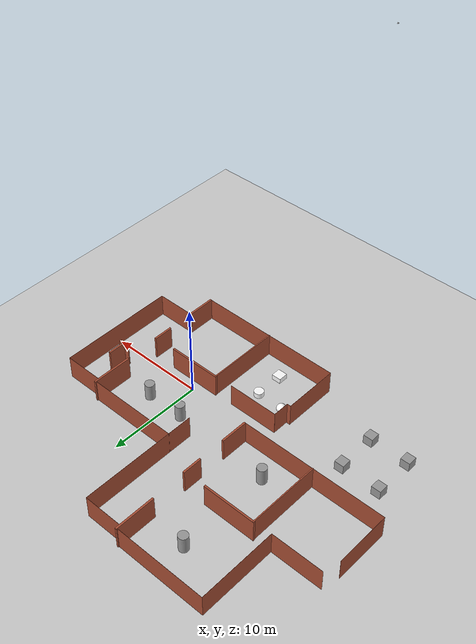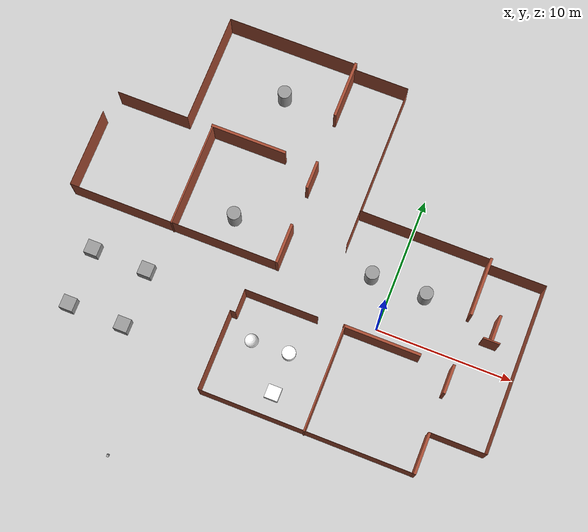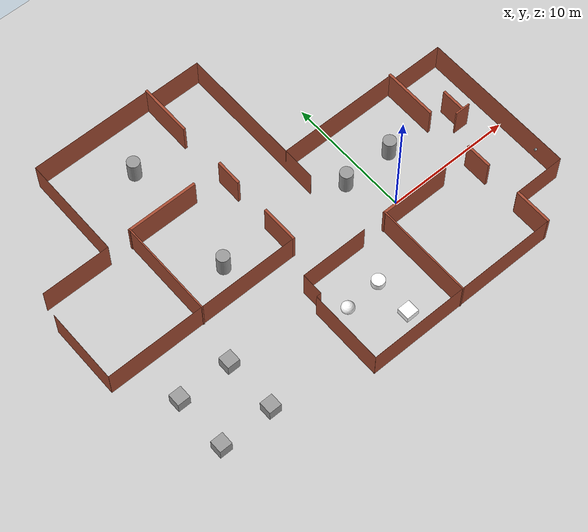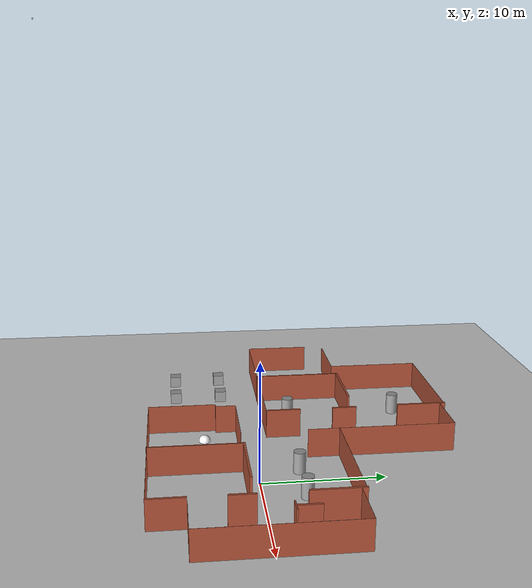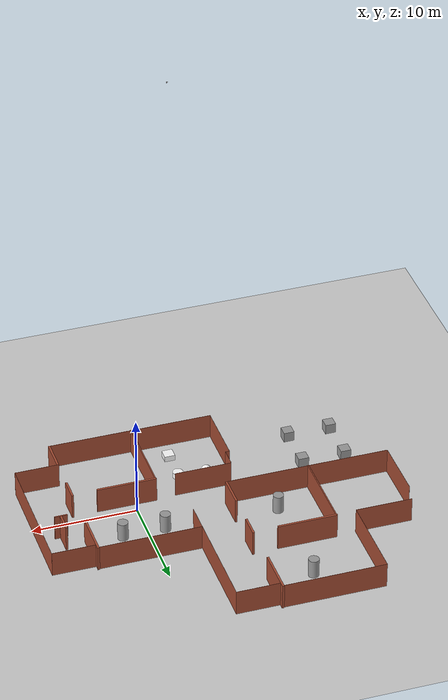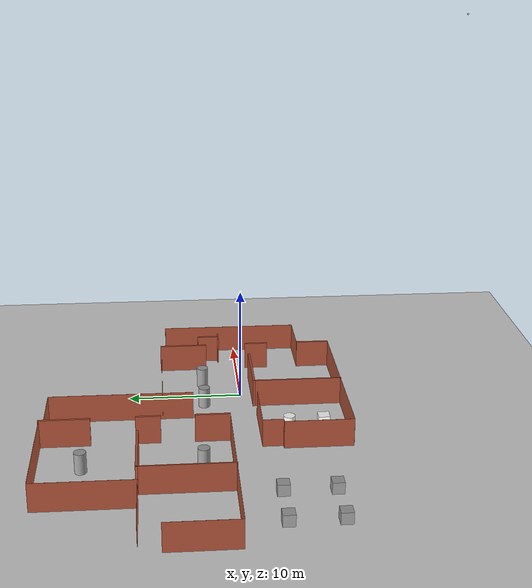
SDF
<sdf version="1.6">
 <world name="default">
  <include><uri>model://ground_plane</uri></include>
  <include><uri>model://sun</uri></include>
  <include>
   <pose>0.079097 -0.839942 0 0 -0 0</pose>
   <scale>1 1 1</scale>
   <uri>model://ANPL_Lab_Extended_0</uri>
  </include>
  <include>
   <pose>-13.886 9.34363 0 0 -0 0</pose>
   <scale>1 1 1</scale>
   <uri>model://ANPL_Lab_Extended_1</uri>
  </include>
  <include><pose>-20.8331 -1.98878 0.5 0 -0 0</pose><scale>1 1 1</scale><uri>model://unit_box</uri></include>
  <include><pose>-16.6927 -2.04585 0.5 0 -0 0</pose><scale>1 1 1</scale><uri>model://unit_box</uri></include>
  <include><pose>-20.8331 -6.27341 0.5 0 -0 0</pose><scale>1 1 1</scale><uri>model://unit_box</uri></include>
  <include><pose>-16.6927 -6.27341 0.5 0 -0 0</pose><scale>1 1 1</scale><uri>model://unit_box</uri></include>
  <include><pose>-5.12882 -5.35988 0 0 -0 0</pose><uri>model://textured_shapes_T</uri></include>
  <model name="sensor_camera">
   <static>true</static>
   <pose>-8.189 -16.24 34.88 0.0 1.08 1.524</pose>
   <link name="link">
    <visual name="visual"><geometry><box><size>0.1 0.1 0.1</size></box></geometry></visual>
    <sensor name="my_camera" type="camera">
     <camera>
      <save enabled="true"><path>/tmp/gazebo_camera_save</path></save>
      <horizontal_fov>1.047</horizontal_fov>
      <image><width>1024</width><height>768</height></image>
      <clip><near>0.1</near><far>100</far></clip>
     </camera>
     <always_on>1</always_on>
     <update_rate>20</update_rate>
    </sensor>
   </link>
  </model>
  <plugin name="gazebo_octomap" filename="librotors_gazebo_octomap_plugin.so"/>
 </world>
</sdf>

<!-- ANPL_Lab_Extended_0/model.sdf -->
<sdf version='1.6'>
  <model name='ANPL_Lab_Extended_0'>
    <link name='Wall_165'>
      <pose frame=''>-9.925 -4.975 0 0 -0 1.5708</pose>
      <self_collide>0</self_collide>
      <kinematic>0</kinematic>
      <visual name='Wall_165_Visual'>
        <pose frame=''>0 0 1.25 0 -0 0</pose>
        <geometry>
          <box>
            <size>5.86 0.01 2.5</size>
          </box>
        </geometry>
        <material>
          <script>
            <uri>file://media/materials/scripts/gazebo.material</uri>
            <name>Gazebo/Bricks</name>
          </script>
          <ambient>0.435294 0.796078 0.67451 1</ambient>
          <diffuse>1 1 1 1</diffuse>
          <specular>0.2 0.2 0.2 1</specular>
          <emissive>0 0 0 1</emissive>
        </material>
        <cast_shadows>1</cast_shadows>
        <transparency>0</transparency>
      </visual>
      <collision name='Wall_165_Collision'>
        <laser_retro>0</laser_retro>
        <max_contacts>10</max_contacts>
        <pose frame=''>0 0 1.25 0 -0 0</pose>
        <geometry>
          <box>
            <size>5.86 0.01 2.5</size>
          </box>
        </geometry>
        <surface>
          <friction>
            <ode>
              <mu>1</mu>
              <mu2>1</mu2>
              <fdir1>0 0 0</fdir1>
              <slip1>0</slip1>
              <slip2>0</slip2>
            </ode>
            <torsional>
              <coefficient>1</coefficient>
              <patch_radius>0</patch_radius>
              <surface_radius>0</surface_radius>
              <use_patch_radius>1</use_patch_radius>
              <ode>
                <slip>0</slip>
              </ode>
            </torsional>
          </friction>
          <bounce>
            <restitution_coefficient>0</restitution_coefficient>
            <threshold>1e+06</threshold>
          </bounce>
          <contact>
            <collide_without_contact>0</collide_without_contact>
            <collide_without_contact_bitmask>1</collide_without_contact_bitmask>
            <collide_bitmask>1</collide_bitmask>
            <ode>
              <soft_cfm>0</soft_cfm>
              <soft_erp>0.2</soft_erp>
              <kp>1e+13</kp>
              <kd>1</kd>
              <max_vel>0.01</max_vel>
              <min_depth>0</min_depth>
            </ode>
            <bullet>
              <split_impulse>1</split_impulse>
              <split_impulse_penetration_threshold>-0.01</split_impulse_penetration_threshold>
              <soft_cfm>0</soft_cfm>
              <soft_erp>0.2</soft_erp>
              <kp>1e+13</kp>
              <kd>1</kd>
            </bullet>
          </contact>
        </surface>
      </collision>
    </link>
    <link name='Wall_167'>
      <pose frame=''>-9.725 -2.05 0 0 -0 0</pose>
      <self_collide>0</self_collide>
      <kinematic>0</kinematic>
      <visual name='Wall_167_Visual'>
        <pose frame=''>0 0 1.25 0 -0 0</pose>
        <geometry>
          <box>
            <size>0.41 0.01 2.5</size>
          </box>
        </geometry>
        <material>
          <script>
            <uri>file://media/materials/scripts/gazebo.material</uri>
            <name>Gazebo/Bricks</name>
          </script>
          <ambient>0.435294 0.796078 0.67451 1</ambient>
          <diffuse>1 1 1 1</diffuse>
          <specular>0.2 0.2 0.2 1</specular>
          <emissive>0 0 0 1</emissive>
        </material>
        <cast_shadows>1</cast_shadows>
        <transparency>0</transparency>
      </visual>
      <collision name='Wall_167_Collision'>
        <laser_retro>0</laser_retro>
        <max_contacts>10</max_contacts>
        <pose frame=''>0 0 1.25 0 -0 0</pose>
        <geometry>
          <box>
            <size>0.41 0.01 2.5</size>
          </box>
        </geometry>
        <surface>
          <friction>
            <ode>
              <mu>1</mu>
              <mu2>1</mu2>
              <fdir1>0 0 0</fdir1>
              <slip1>0</slip1>
              <slip2>0</slip2>
            </ode>
            <torsional>
              <coefficient>1</coefficient>
              <patch_radius>0</patch_radius>
              <surface_radius>0</surface_radius>
              <use_patch_radius>1</use_patch_radius>
              <ode>
                <slip>0</slip>
              </ode>
            </torsional>
          </friction>
          <bounce>
            <restitution_coefficient>0</restitution_coefficient>
            <threshold>1e+06</threshold>
          </bounce>
          <contact>
            <collide_without_contact>0</collide_without_contact>
            <collide_without_contact_bitmask>1</collide_without_contact_bitmask>
            <collide_bitmask>1</collide_bitmask>
            <ode>
              <soft_cfm>0</soft_cfm>
              <soft_erp>0.2</soft_erp>
              <kp>1e+13</kp>
              <kd>1</kd>
              <max_vel>0.01</max_vel>
              <min_depth>0</min_depth>
            </ode>
            <bullet>
              <split_impulse>1</split_impulse>
              <split_impulse_penetration_threshold>-0.01</split_impulse_penetration_threshold>
              <soft_cfm>0</soft_cfm>
              <soft_erp>0.2</soft_erp>
              <kp>1e+13</kp>
              <kd>1</kd>
            </bullet>
          </contact>
        </surface>
      </collision>
    </link>
    <link name='Wall_169'>
      <pose frame=''>-9.525 -1.175 0 0 -0 1.5708</pose>
      <self_collide>0</self_collide>
      <kinematic>0</kinematic>
      <visual name='Wall_169_Visual'>
        <pose frame=''>0 0 1.25 0 -0 0</pose>
        <geometry>
          <box>
            <size>1.76 0.01 2.5</size>
          </box>
        </geometry>
        <material>
          <script>
            <uri>file://media/materials/scripts/gazebo.material</uri>
            <name>Gazebo/Bricks</name>
          </script>
          <ambient>0.435294 0.796078 0.67451 1</ambient>
          <diffuse>1 1 1 1</diffuse>
          <specular>0.2 0.2 0.2 1</specular>
          <emissive>0 0 0 1</emissive>
        </material>
        <cast_shadows>1</cast_shadows>
        <transparency>0</transparency>
      </visual>
      <collision name='Wall_169_Collision'>
        <laser_retro>0</laser_retro>
        <max_contacts>10</max_contacts>
        <pose frame=''>0 0 1.25 0 -0 0</pose>
        <geometry>
          <box>
            <size>1.76 0.01 2.5</size>
          </box>
        </geometry>
        <surface>
          <friction>
            <ode>
              <mu>1</mu>
              <mu2>1</mu2>
              <fdir1>0 0 0</fdir1>
              <slip1>0</slip1>
              <slip2>0</slip2>
            </ode>
            <torsional>
              <coefficient>1</coefficient>
              <patch_radius>0</patch_radius>
              <surface_radius>0</surface_radius>
              <use_patch_radius>1</use_patch_radius>
              <ode>
                <slip>0</slip>
              </ode>
            </torsional>
          </friction>
          <bounce>
            <restitution_coefficient>0</restitution_coefficient>
            <threshold>1e+06</threshold>
          </bounce>
          <contact>
            <collide_without_contact>0</collide_without_contact>
            <collide_without_contact_bitmask>1</collide_without_contact_bitmask>
            <collide_bitmask>1</collide_bitmask>
            <ode>
              <soft_cfm>0</soft_cfm>
              <soft_erp>0.2</soft_erp>
              <kp>1e+13</kp>
              <kd>1</kd>
              <max_vel>0.01</max_vel>
              <min_depth>0</min_depth>
            </ode>
            <bullet>
              <split_impulse>1</split_impulse>
              <split_impulse_penetration_threshold>-0.01</split_impulse_penetration_threshold>
              <soft_cfm>0</soft_cfm>
              <soft_erp>0.2</soft_erp>
              <kp>1e+13</kp>
              <kd>1</kd>
            </bullet>
          </contact>
        </surface>
      </collision>
    </link>
    <link name='Wall_171'>
      <pose frame=''>-6.8125 -0.3 0 0 -0 0</pose>
      <self_collide>0</self_collide>
      <kinematic>0</kinematic>
      <visual name='Wall_171_Visual'>
        <pose frame=''>0 0 1.25 0 -0 0</pose>
        <geometry>
          <box>
            <size>5.435 0.01 2.5</size>
          </box>
        </geometry>
        <material>
          <script>
            <uri>file://media/materials/scripts/gazebo.material</uri>
            <name>Gazebo/Bricks</name>
          </script>
          <ambient>0.435294 0.796078 0.67451 1</ambient>
          <diffuse>1 1 1 1</diffuse>
          <specular>0.2 0.2 0.2 1</specular>
          <emissive>0 0 0 1</emissive>
        </material>
        <cast_shadows>1</cast_shadows>
        <transparency>0</transparency>
      </visual>
      <collision name='Wall_171_Collision'>
        <laser_retro>0</laser_retro>
        <max_contacts>10</max_contacts>
        <pose frame=''>0 0 1.25 0 -0 0</pose>
        <geometry>
          <box>
            <size>5.435 0.01 2.5</size>
          </box>
        </geometry>
        <surface>
          <friction>
            <ode>
              <mu>1</mu>
              <mu2>1</mu2>
              <fdir1>0 0 0</fdir1>
              <slip1>0</slip1>
              <slip2>0</slip2>
            </ode>
            <torsional>
              <coefficient>1</coefficient>
              <patch_radius>0</patch_radius>
              <surface_radius>0</surface_radius>
              <use_patch_radius>1</use_patch_radius>
              <ode>
                <slip>0</slip>
              </ode>
            </torsional>
          </friction>
          <bounce>
            <restitution_coefficient>0</restitution_coefficient>
            <threshold>1e+06</threshold>
          </bounce>
          <contact>
            <collide_without_contact>0</collide_without_contact>
            <collide_without_contact_bitmask>1</collide_without_contact_bitmask>
            <collide_bitmask>1</collide_bitmask>
            <ode>
              <soft_cfm>0</soft_cfm>
              <soft_erp>0.2</soft_erp>
              <kp>1e+13</kp>
              <kd>1</kd>
              <max_vel>0.01</max_vel>
              <min_depth>0</min_depth>
            </ode>
            <bullet>
              <split_impulse>1</split_impulse>
              <split_impulse_penetration_threshold>-0.01</split_impulse_penetration_threshold>
              <soft_cfm>0</soft_cfm>
              <soft_erp>0.2</soft_erp>
              <kp>1e+13</kp>
              <kd>1</kd>
            </bullet>
          </contact>
        </surface>
      </collision>
    </link>
    <link name='Wall_175'>
      <pose frame=''>0.7875 7.9 0 0 -0 0</pose>
      <self_collide>0</self_collide>
      <kinematic>0</kinematic>
      <visual name='Wall_175_Visual'>
        <pose frame=''>0 0 1.25 0 -0 0</pose>
        <geometry>
          <box>
            <size>9.785 0.01 2.5</size>
          </box>
        </geometry>
        <material>
          <script>
            <uri>file://media/materials/scripts/gazebo.material</uri>
            <name>Gazebo/Bricks</name>
          </script>
          <ambient>0.435294 0.796078 0.67451 1</ambient>
          <diffuse>1 1 1 1</diffuse>
          <specular>0.2 0.2 0.2 1</specular>
          <emissive>0 0 0 1</emissive>
        </material>
        <cast_shadows>1</cast_shadows>
        <transparency>0</transparency>
      </visual>
      <collision name='Wall_175_Collision'>
        <laser_retro>0</laser_retro>
        <max_contacts>10</max_contacts>
        <pose frame=''>0 0 1.25 0 -0 0</pose>
        <geometry>
          <box>
            <size>9.785 0.01 2.5</size>
          </box>
        </geometry>
        <surface>
          <friction>
            <ode>
              <mu>1</mu>
              <mu2>1</mu2>
              <fdir1>0 0 0</fdir1>
              <slip1>0</slip1>
              <slip2>0</slip2>
            </ode>
            <torsional>
              <coefficient>1</coefficient>
              <patch_radius>0</patch_radius>
              <surface_radius>0</surface_radius>
              <use_patch_radius>1</use_patch_radius>
              <ode>
                <slip>0</slip>
              </ode>
            </torsional>
          </friction>
          <bounce>
            <restitution_coefficient>0</restitution_coefficient>
            <threshold>1e+06</threshold>
          </bounce>
          <contact>
            <collide_without_contact>0</collide_without_contact>
            <collide_without_contact_bitmask>1</collide_without_contact_bitmask>
            <collide_bitmask>1</collide_bitmask>
            <ode>
              <soft_cfm>0</soft_cfm>
              <soft_erp>0.2</soft_erp>
              <kp>1e+13</kp>
              <kd>1</kd>
              <max_vel>0.01</max_vel>
              <min_depth>0</min_depth>
            </ode>
            <bullet>
              <split_impulse>1</split_impulse>
              <split_impulse_penetration_threshold>-0.01</split_impulse_penetration_threshold>
              <soft_cfm>0</soft_cfm>
              <soft_erp>0.2</soft_erp>
              <kp>1e+13</kp>
              <kd>1</kd>
            </bullet>
          </contact>
        </surface>
      </collision>
    </link>
    <link name='Wall_177'>
      <pose frame=''>5.675 5.85 0 0 0 -1.5708</pose>
      <self_collide>0</self_collide>
      <kinematic>0</kinematic>
      <visual name='Wall_177_Visual'>
        <pose frame=''>0 0 1.25 0 -0 0</pose>
        <geometry>
          <box>
            <size>4.3 0.2 2.5</size>
          </box>
        </geometry>
        <material>
          <script>
            <uri>file://media/materials/scripts/gazebo.material</uri>
            <name>Gazebo/Bricks</name>
          </script>
          <ambient>0.435294 0.796078 0.67451 1</ambient>
          <diffuse>1 1 1 1</diffuse>
          <specular>0.2 0.2 0.2 1</specular>
          <emissive>0 0 0 1</emissive>
        </material>
        <cast_shadows>1</cast_shadows>
        <transparency>0</transparency>
      </visual>
      <collision name='Wall_177_Collision'>
        <laser_retro>0</laser_retro>
        <max_contacts>10</max_contacts>
        <pose frame=''>0 0 1.25 0 -0 0</pose>
        <geometry>
          <box>
            <size>4.3 0.2 2.5</size>
          </box>
        </geometry>
        <surface>
          <friction>
            <ode>
              <mu>1</mu>
              <mu2>1</mu2>
              <fdir1>0 0 0</fdir1>
              <slip1>0</slip1>
              <slip2>0</slip2>
            </ode>
            <torsional>
              <coefficient>1</coefficient>
              <patch_radius>0</patch_radius>
              <surface_radius>0</surface_radius>
              <use_patch_radius>1</use_patch_radius>
              <ode>
                <slip>0</slip>
              </ode>
            </torsional>
          </friction>
          <bounce>
            <restitution_coefficient>0</restitution_coefficient>
            <threshold>1e+06</threshold>
          </bounce>
          <contact>
            <collide_without_contact>0</collide_without_contact>
            <collide_without_contact_bitmask>1</collide_without_contact_bitmask>
            <collide_bitmask>1</collide_bitmask>
            <ode>
              <soft_cfm>0</soft_cfm>
              <soft_erp>0.2</soft_erp>
              <kp>1e+13</kp>
              <kd>1</kd>
              <max_vel>0.01</max_vel>
              <min_depth>0</min_depth>
            </ode>
            <bullet>
              <split_impulse>1</split_impulse>
              <split_impulse_penetration_threshold>-0.01</split_impulse_penetration_threshold>
              <soft_cfm>0</soft_cfm>
              <soft_erp>0.2</soft_erp>
              <kp>1e+13</kp>
              <kd>1</kd>
            </bullet>
          </contact>
        </surface>
      </collision>
    </link>
    <link name='Wall_179'>
      <pose frame=''>7.775 7.5 0 0 -0 0</pose>
      <self_collide>0</self_collide>
      <kinematic>0</kinematic>
      <visual name='Wall_179_Visual'>
        <pose frame=''>0 0 1.25 0 -0 0</pose>
        <geometry>
          <box>
            <size>4.21 0.01 2.5</size>
          </box>
        </geometry>
        <material>
          <script>
            <uri>file://media/materials/scripts/gazebo.material</uri>
            <name>Gazebo/Bricks</name>
          </script>
          <ambient>0.435294 0.796078 0.67451 1</ambient>
          <diffuse>1 1 1 1</diffuse>
          <specular>0.2 0.2 0.2 1</specular>
          <emissive>0 0 0 1</emissive>
        </material>
        <cast_shadows>1</cast_shadows>
        <transparency>0</transparency>
      </visual>
      <collision name='Wall_179_Collision'>
        <laser_retro>0</laser_retro>
        <max_contacts>10</max_contacts>
        <pose frame=''>0 0 1.25 0 -0 0</pose>
        <geometry>
          <box>
            <size>4.21 0.01 2.5</size>
          </box>
        </geometry>
        <surface>
          <friction>
            <ode>
              <mu>1</mu>
              <mu2>1</mu2>
              <fdir1>0 0 0</fdir1>
              <slip1>0</slip1>
              <slip2>0</slip2>
            </ode>
            <torsional>
              <coefficient>1</coefficient>
              <patch_radius>0</patch_radius>
              <surface_radius>0</surface_radius>
              <use_patch_radius>1</use_patch_radius>
              <ode>
                <slip>0</slip>
              </ode>
            </torsional>
          </friction>
          <bounce>
            <restitution_coefficient>0</restitution_coefficient>
            <threshold>1e+06</threshold>
          </bounce>
          <contact>
            <collide_without_contact>0</collide_without_contact>
            <collide_without_contact_bitmask>1</collide_without_contact_bitmask>
            <collide_bitmask>1</collide_bitmask>
            <ode>
              <soft_cfm>0</soft_cfm>
              <soft_erp>0.2</soft_erp>
              <kp>1e+13</kp>
              <kd>1</kd>
              <max_vel>0.01</max_vel>
              <min_depth>0</min_depth>
            </ode>
            <bullet>
              <split_impulse>1</split_impulse>
              <split_impulse_penetration_threshold>-0.01</split_impulse_penetration_threshold>
              <soft_cfm>0</soft_cfm>
              <soft_erp>0.2</soft_erp>
              <kp>1e+13</kp>
              <kd>1</kd>
            </bullet>
          </contact>
        </surface>
      </collision>
    </link>
    <link name='Wall_181'>
      <pose frame=''>9.875 1.285 0 0 0 -1.5708</pose>
      <self_collide>0</self_collide>
      <kinematic>0</kinematic>
      <visual name='Wall_181_Visual'>
        <pose frame=''>0 0 1.25 0 -0 0</pose>
        <geometry>
          <box>
            <size>12.44 0.01 2.5</size>
          </box>
        </geometry>
        <material>
          <script>
            <uri>file://media/materials/scripts/gazebo.material</uri>
            <name>Gazebo/Bricks</name>
          </script>
          <ambient>0.435294 0.796078 0.67451 1</ambient>
          <diffuse>1 1 1 1</diffuse>
          <specular>0.2 0.2 0.2 1</specular>
          <emissive>0 0 0 1</emissive>
        </material>
        <cast_shadows>1</cast_shadows>
        <transparency>0</transparency>
      </visual>
      <collision name='Wall_181_Collision'>
        <laser_retro>0</laser_retro>
        <max_contacts>10</max_contacts>
        <pose frame=''>0 0 1.25 0 -0 0</pose>
        <geometry>
          <box>
            <size>12.44 0.01 2.5</size>
          </box>
        </geometry>
        <surface>
          <friction>
            <ode>
              <mu>1</mu>
              <mu2>1</mu2>
              <fdir1>0 0 0</fdir1>
              <slip1>0</slip1>
              <slip2>0</slip2>
            </ode>
            <torsional>
              <coefficient>1</coefficient>
              <patch_radius>0</patch_radius>
              <surface_radius>0</surface_radius>
              <use_patch_radius>1</use_patch_radius>
              <ode>
                <slip>0</slip>
              </ode>
            </torsional>
          </friction>
          <bounce>
            <restitution_coefficient>0</restitution_coefficient>
            <threshold>1e+06</threshold>
          </bounce>
          <contact>
            <collide_without_contact>0</collide_without_contact>
            <collide_without_contact_bitmask>1</collide_without_contact_bitmask>
            <collide_bitmask>1</collide_bitmask>
            <ode>
              <soft_cfm>0</soft_cfm>
              <soft_erp>0.2</soft_erp>
              <kp>1e+13</kp>
              <kd>1</kd>
              <max_vel>0.01</max_vel>
              <min_depth>0</min_depth>
            </ode>
            <bullet>
              <split_impulse>1</split_impulse>
              <split_impulse_penetration_threshold>-0.01</split_impulse_penetration_threshold>
              <soft_cfm>0</soft_cfm>
              <soft_erp>0.2</soft_erp>
              <kp>1e+13</kp>
              <kd>1</kd>
            </bullet>
          </contact>
        </surface>
      </collision>
    </link>
    <link name='Wall_183'>
      <pose frame=''>7.6044 3.46126 0 0 -0 1.5708</pose>
      <inertial>
        <mass>1.43571</mass>
        <pose frame=''>0 0 0 0 -0 0</pose>
        <inertia>
          <ixx>1.43571</ixx>
          <ixy>0</ixy>
          <ixz>0</ixz>
          <iyy>2.19753</iyy>
          <iyz>0</iyz>
          <izz>2.19753</izz>
        </inertia>
      </inertial>
      <self_collide>0</self_collide>
      <kinematic>0</kinematic>
      <visual name='Wall_183_Visual'>
        <pose frame=''>0 0 1.25 0 -0 0</pose>
        <geometry>
          <box>
            <size>1.86641 0.2 2.5</size>
          </box>
        </geometry>
        <material>
          <script>
            <uri>file://media/materials/scripts/gazebo.material</uri>
            <name>Gazebo/Bricks</name>
          </script>
          <ambient>0.435 0.796 0.675 1</ambient>
          <diffuse>1 1 1 1</diffuse>
          <specular>0.2 0.2 0.2 1</specular>
          <emissive>0 0 0 1</emissive>
          <shader type='vertex'>
            <normal_map>__default__</normal_map>
          </shader>
        </material>
        <cast_shadows>1</cast_shadows>
        <transparency>0</transparency>
      </visual>
      <collision name='Wall_183_Collision'>
        <laser_retro>0</laser_retro>
        <max_contacts>10</max_contacts>
        <pose frame=''>0 0 1.25 0 -0 0</pose>
        <geometry>
          <box>
            <size>1.86641 0.2 2.5</size>
          </box>
        </geometry>
        <surface>
          <friction>
            <ode>
              <mu>1</mu>
              <mu2>1</mu2>
              <fdir1>0 0 0</fdir1>
              <slip1>0</slip1>
              <slip2>0</slip2>
            </ode>
            <torsional>
              <coefficient>1</coefficient>
              <patch_radius>0</patch_radius>
              <surface_radius>0</surface_radius>
              <use_patch_radius>1</use_patch_radius>
              <ode>
                <slip>0</slip>
              </ode>
            </torsional>
          </friction>
          <bounce>
            <restitution_coefficient>0</restitution_coefficient>
            <threshold>1e+06</threshold>
          </bounce>
          <contact>
            <collide_without_contact>0</collide_without_contact>
            <collide_without_contact_bitmask>1</collide_without_contact_bitmask>
            <collide_bitmask>1</collide_bitmask>
            <ode>
              <soft_cfm>0</soft_cfm>
              <soft_erp>0.2</soft_erp>
              <kp>1e+13</kp>
              <kd>1</kd>
              <max_vel>0.01</max_vel>
              <min_depth>0</min_depth>
            </ode>
            <bullet>
              <split_impulse>1</split_impulse>
              <split_impulse_penetration_threshold>-0.01</split_impulse_penetration_threshold>
              <soft_cfm>0</soft_cfm>
              <soft_erp>0.2</soft_erp>
              <kp>1e+13</kp>
              <kd>1</kd>
            </bullet>
          </contact>
        </surface>
      </collision>
    </link>
    <link name='Wall_185'>
      <pose frame=''>5.76868 -1.05 0 0 0 -1.5708</pose>
      <inertial>
        <mass>1</mass>
        <pose frame=''>0 0 0 0 -0 0</pose>
        <inertia>
          <ixx>1</ixx>
          <ixy>0</ixy>
          <ixz>0</ixz>
          <iyy>1</iyy>
          <iyz>0</iyz>
          <izz>1</izz>
        </inertia>
      </inertial>
      <self_collide>0</self_collide>
      <kinematic>0</kinematic>
      <visual name='Wall_185_Visual'>
        <pose frame=''>0 0 1.25 0 -0 0</pose>
        <geometry>
          <box>
            <size>2.1 0.2 2.5</size>
          </box>
        </geometry>
        <material>
          <script>
            <uri>file://media/materials/scripts/gazebo.material</uri>
            <name>Gazebo/Bricks</name>
          </script>
          <ambient>0.435 0.796 0.675 1</ambient>
          <diffuse>1 1 1 1</diffuse>
          <specular>0.2 0.2 0.2 1</specular>
          <emissive>0 0 0 1</emissive>
          <shader type='vertex'>
            <normal_map>__default__</normal_map>
          </shader>
        </material>
        <cast_shadows>1</cast_shadows>
        <transparency>0</transparency>
      </visual>
      <collision name='Wall_185_Collision'>
        <laser_retro>0</laser_retro>
        <max_contacts>10</max_contacts>
        <pose frame=''>0 0 1.25 0 -0 0</pose>
        <geometry>
          <box>
            <size>2.1 0.2 2.5</size>
          </box>
        </geometry>
        <surface>
          <friction>
            <ode>
              <mu>1</mu>
              <mu2>1</mu2>
              <fdir1>0 0 0</fdir1>
              <slip1>0</slip1>
              <slip2>0</slip2>
            </ode>
            <torsional>
              <coefficient>1</coefficient>
              <patch_radius>0</patch_radius>
              <surface_radius>0</surface_radius>
              <use_patch_radius>1</use_patch_radius>
              <ode>
                <slip>0</slip>
              </ode>
            </torsional>
          </friction>
          <bounce>
            <restitution_coefficient>0</restitution_coefficient>
            <threshold>1e+06</threshold>
          </bounce>
          <contact>
            <collide_without_contact>0</collide_without_contact>
            <collide_without_contact_bitmask>1</collide_without_contact_bitmask>
            <collide_bitmask>1</collide_bitmask>
            <ode>
              <soft_cfm>0</soft_cfm>
              <soft_erp>0.2</soft_erp>
              <kp>1e+13</kp>
              <kd>1</kd>
              <max_vel>0.01</max_vel>
              <min_depth>0</min_depth>
            </ode>
            <bullet>
              <split_impulse>1</split_impulse>
              <split_impulse_penetration_threshold>-0.01</split_impulse_penetration_threshold>
              <soft_cfm>0</soft_cfm>
              <soft_erp>0.2</soft_erp>
              <kp>1e+13</kp>
              <kd>1</kd>
            </bullet>
          </contact>
        </surface>
      </collision>
    </link>
    <link name='Wall_187'>
      <pose frame=''>7.59405 2.49 0 0 -0 0</pose>
      <inertial>
        <inertia>
          <ixx>nan</ixx>
          <ixy>0</ixy>
          <ixz>0</ixz>
          <iyy>nan</iyy>
          <iyz>0</iyz>
          <izz>nan</izz>
        </inertia>
        <mass>0</mass>
        <pose frame=''>0 0 0 0 -0 0</pose>
      </inertial>
      <self_collide>0</self_collide>
      <kinematic>0</kinematic>
      <visual name='Wall_187_Visual'>
        <pose frame=''>0 0 1.25 0 -0 0</pose>
        <geometry>
          <box>
            <size>1.23163 0.11 2.5</size>
          </box>
        </geometry>
        <material>
          <script>
            <uri>file://media/materials/scripts/gazebo.material</uri>
            <name>Gazebo/Bricks</name>
          </script>
          <ambient>0.435294 0.796078 0.67451 1</ambient>
          <diffuse>1 1 1 1</diffuse>
          <specular>0.2 0.2 0.2 1</specular>
          <emissive>0 0 0 1</emissive>
        </material>
        <cast_shadows>1</cast_shadows>
        <transparency>0</transparency>
      </visual>
      <collision name='Wall_187_Collision'>
        <laser_retro>0</laser_retro>
        <max_contacts>10</max_contacts>
        <pose frame=''>0 0 1.25 0 -0 0</pose>
        <geometry>
          <box>
            <size>1.23163 0.11 2.5</size>
          </box>
        </geometry>
        <surface>
          <friction>
            <ode>
              <mu>1</mu>
              <mu2>1</mu2>
              <fdir1>0 0 0</fdir1>
              <slip1>0</slip1>
              <slip2>0</slip2>
            </ode>
            <torsional>
              <coefficient>1</coefficient>
              <patch_radius>0</patch_radius>
              <surface_radius>0</surface_radius>
              <use_patch_radius>1</use_patch_radius>
              <ode>
                <slip>0</slip>
              </ode>
            </torsional>
          </friction>
          <bounce>
            <restitution_coefficient>0</restitution_coefficient>
            <threshold>1e+06</threshold>
          </bounce>
          <contact>
            <collide_without_contact>0</collide_without_contact>
            <collide_without_contact_bitmask>1</collide_without_contact_bitmask>
            <collide_bitmask>1</collide_bitmask>
            <ode>
              <soft_cfm>0</soft_cfm>
              <soft_erp>0.2</soft_erp>
              <kp>1e+13</kp>
              <kd>1</kd>
              <max_vel>0.01</max_vel>
              <min_depth>0</min_depth>
            </ode>
            <bullet>
              <split_impulse>1</split_impulse>
              <split_impulse_penetration_threshold>-0.01</split_impulse_penetration_threshold>
              <soft_cfm>0</soft_cfm>
              <soft_erp>0.2</soft_erp>
              <kp>1e+13</kp>
              <kd>1</kd>
            </bullet>
          </contact>
        </surface>
      </collision>
    </link>
    <link name='Wall_201'>
      <pose frame=''>7.775 -4.93 0 0 -0 3.14159</pose>
      <self_collide>0</self_collide>
      <kinematic>0</kinematic>
      <visual name='Wall_201_Visual'>
        <pose frame=''>0 0 1.25 0 -0 0</pose>
        <geometry>
          <box>
            <size>4.21 0.01 2.5</size>
          </box>
        </geometry>
        <material>
          <script>
            <uri>file://media/materials/scripts/gazebo.material</uri>
            <name>Gazebo/Bricks</name>
          </script>
          <ambient>0.435294 0.796078 0.67451 1</ambient>
          <diffuse>1 1 1 1</diffuse>
          <specular>0.2 0.2 0.2 1</specular>
          <emissive>0 0 0 1</emissive>
        </material>
        <cast_shadows>1</cast_shadows>
        <transparency>0</transparency>
      </visual>
      <collision name='Wall_201_Collision'>
        <laser_retro>0</laser_retro>
        <max_contacts>10</max_contacts>
        <pose frame=''>0 0 1.25 0 -0 0</pose>
        <geometry>
          <box>
            <size>4.21 0.01 2.5</size>
          </box>
        </geometry>
        <surface>
          <friction>
            <ode>
              <mu>1</mu>
              <mu2>1</mu2>
              <fdir1>0 0 0</fdir1>
              <slip1>0</slip1>
              <slip2>0</slip2>
            </ode>
            <torsional>
              <coefficient>1</coefficient>
              <patch_radius>0</patch_radius>
              <surface_radius>0</surface_radius>
              <use_patch_radius>1</use_patch_radius>
              <ode>
                <slip>0</slip>
              </ode>
            </torsional>
          </friction>
          <bounce>
            <restitution_coefficient>0</restitution_coefficient>
            <threshold>1e+06</threshold>
          </bounce>
          <contact>
            <collide_without_contact>0</collide_without_contact>
            <collide_without_contact_bitmask>1</collide_without_contact_bitmask>
            <collide_bitmask>1</collide_bitmask>
            <ode>
              <soft_cfm>0</soft_cfm>
              <soft_erp>0.2</soft_erp>
              <kp>1e+13</kp>
              <kd>1</kd>
              <max_vel>0.01</max_vel>
              <min_depth>0</min_depth>
            </ode>
            <bullet>
              <split_impulse>1</split_impulse>
              <split_impulse_penetration_threshold>-0.01</split_impulse_penetration_threshold>
              <soft_cfm>0</soft_cfm>
              <soft_erp>0.2</soft_erp>
              <kp>1e+13</kp>
              <kd>1</kd>
            </bullet>
          </contact>
        </surface>
      </collision>
    </link>
    <link name='Wall_203'>
      <pose frame=''>5.76868 -6.42951 0 0 0 -1.5708</pose>
      <inertial>
        <inertia>
          <ixx>1.79769e+308</ixx>
          <ixy>0</ixy>
          <ixz>0</ixz>
          <iyy>1.79769e+308</iyy>
          <iyz>0</iyz>
          <izz>1.79769e+308</izz>
        </inertia>
        <mass>0</mass>
        <pose frame=''>0 0 0 0 -0 0</pose>
      </inertial>
      <self_collide>0</self_collide>
      <kinematic>0</kinematic>
      <visual name='Wall_203_Visual'>
        <pose frame=''>0 0 1.25 0 -0 0</pose>
        <geometry>
          <box>
            <size>2.97075 0.2 2.5</size>
          </box>
        </geometry>
        <material>
          <script>
            <uri>file://media/materials/scripts/gazebo.material</uri>
            <name>Gazebo/Bricks</name>
          </script>
          <ambient>0.435 0.796 0.675 1</ambient>
          <diffuse>1 1 1 1</diffuse>
          <specular>0.2 0.2 0.2 1</specular>
          <emissive>0 0 0 1</emissive>
          <shader type='vertex'>
            <normal_map>__default__</normal_map>
          </shader>
        </material>
        <cast_shadows>1</cast_shadows>
        <transparency>0</transparency>
      </visual>
      <collision name='Wall_203_Collision'>
        <laser_retro>0</laser_retro>
        <max_contacts>10</max_contacts>
        <pose frame=''>0 0 1.25 0 -0 0</pose>
        <geometry>
          <box>
            <size>2.97075 0.2 2.5</size>
          </box>
        </geometry>
        <surface>
          <friction>
            <ode>
              <mu>1</mu>
              <mu2>1</mu2>
              <fdir1>0 0 0</fdir1>
              <slip1>0</slip1>
              <slip2>0</slip2>
            </ode>
            <torsional>
              <coefficient>1</coefficient>
              <patch_radius>0</patch_radius>
              <surface_radius>0</surface_radius>
              <use_patch_radius>1</use_patch_radius>
              <ode>
                <slip>0</slip>
              </ode>
            </torsional>
          </friction>
          <bounce>
            <restitution_coefficient>0</restitution_coefficient>
            <threshold>1e+06</threshold>
          </bounce>
          <contact>
            <collide_without_contact>0</collide_without_contact>
            <collide_without_contact_bitmask>1</collide_without_contact_bitmask>
            <collide_bitmask>1</collide_bitmask>
            <ode>
              <soft_cfm>0</soft_cfm>
              <soft_erp>0.2</soft_erp>
              <kp>1e+13</kp>
              <kd>1</kd>
              <max_vel>0.01</max_vel>
              <min_depth>0</min_depth>
            </ode>
            <bullet>
              <split_impulse>1</split_impulse>
              <split_impulse_penetration_threshold>-0.01</split_impulse_penetration_threshold>
              <soft_cfm>0</soft_cfm>
              <soft_erp>0.2</soft_erp>
              <kp>1e+13</kp>
              <kd>1</kd>
            </bullet>
          </contact>
        </surface>
      </collision>
    </link>
    <link name='Wall_205'>
      <pose frame=''>-2.125 -7.9 0 0 -0 3.14159</pose>
      <self_collide>0</self_collide>
      <kinematic>0</kinematic>
      <visual name='Wall_205_Visual'>
        <pose frame=''>0 0 1.25 0 -0 0</pose>
        <geometry>
          <box>
            <size>15.61 0.01 2.5</size>
          </box>
        </geometry>
        <material>
          <script>
            <uri>file://media/materials/scripts/gazebo.material</uri>
            <name>Gazebo/Bricks</name>
          </script>
          <ambient>0.435294 0.796078 0.67451 1</ambient>
          <diffuse>1 1 1 1</diffuse>
          <specular>0.2 0.2 0.2 1</specular>
          <emissive>0 0 0 1</emissive>
        </material>
        <cast_shadows>1</cast_shadows>
        <transparency>0</transparency>
      </visual>
      <collision name='Wall_205_Collision'>
        <laser_retro>0</laser_retro>
        <max_contacts>10</max_contacts>
        <pose frame=''>0 0 1.25 0 -0 0</pose>
        <geometry>
          <box>
            <size>15.61 0.01 2.5</size>
          </box>
        </geometry>
        <surface>
          <friction>
            <ode>
              <mu>1</mu>
              <mu2>1</mu2>
              <fdir1>0 0 0</fdir1>
              <slip1>0</slip1>
              <slip2>0</slip2>
            </ode>
            <torsional>
              <coefficient>1</coefficient>
              <patch_radius>0</patch_radius>
              <surface_radius>0</surface_radius>
              <use_patch_radius>1</use_patch_radius>
              <ode>
                <slip>0</slip>
              </ode>
            </torsional>
          </friction>
          <bounce>
            <restitution_coefficient>0</restitution_coefficient>
            <threshold>1e+06</threshold>
          </bounce>
          <contact>
            <collide_without_contact>0</collide_without_contact>
            <collide_without_contact_bitmask>1</collide_without_contact_bitmask>
            <collide_bitmask>1</collide_bitmask>
            <ode>
              <soft_cfm>0</soft_cfm>
              <soft_erp>0.2</soft_erp>
              <kp>1e+13</kp>
              <kd>1</kd>
              <max_vel>0.01</max_vel>
              <min_depth>0</min_depth>
            </ode>
            <bullet>
              <split_impulse>1</split_impulse>
              <split_impulse_penetration_threshold>-0.01</split_impulse_penetration_threshold>
              <soft_cfm>0</soft_cfm>
              <soft_erp>0.2</soft_erp>
              <kp>1e+13</kp>
              <kd>1</kd>
            </bullet>
          </contact>
        </surface>
      </collision>
    </link>
    <link name='Wall_207'>
      <pose frame=''>-2.175 -4.05 0 0 -0 1.5708</pose>
      <self_collide>0</self_collide>
      <kinematic>0</kinematic>
      <visual name='Wall_207_Visual'>
        <pose frame=''>0 0 1.25 0 -0 0</pose>
        <geometry>
          <box>
            <size>7.81 0.11 2.5</size>
          </box>
        </geometry>
        <material>
          <script>
            <uri>file://media/materials/scripts/gazebo.material</uri>
            <name>Gazebo/Bricks</name>
          </script>
          <ambient>0.435294 0.796078 0.67451 1</ambient>
          <diffuse>1 1 1 1</diffuse>
          <specular>0.2 0.2 0.2 1</specular>
          <emissive>0 0 0 1</emissive>
        </material>
        <cast_shadows>1</cast_shadows>
        <transparency>0</transparency>
      </visual>
      <collision name='Wall_207_Collision'>
        <laser_retro>0</laser_retro>
        <max_contacts>10</max_contacts>
        <pose frame=''>0 0 1.25 0 -0 0</pose>
        <geometry>
          <box>
            <size>7.81 0.11 2.5</size>
          </box>
        </geometry>
        <surface>
          <friction>
            <ode>
              <mu>1</mu>
              <mu2>1</mu2>
              <fdir1>0 0 0</fdir1>
              <slip1>0</slip1>
              <slip2>0</slip2>
            </ode>
            <torsional>
              <coefficient>1</coefficient>
              <patch_radius>0</patch_radius>
              <surface_radius>0</surface_radius>
              <use_patch_radius>1</use_patch_radius>
              <ode>
                <slip>0</slip>
              </ode>
            </torsional>
          </friction>
          <bounce>
            <restitution_coefficient>0</restitution_coefficient>
            <threshold>1e+06</threshold>
          </bounce>
          <contact>
            <collide_without_contact>0</collide_without_contact>
            <collide_without_contact_bitmask>1</collide_without_contact_bitmask>
            <collide_bitmask>1</collide_bitmask>
            <ode>
              <soft_cfm>0</soft_cfm>
              <soft_erp>0.2</soft_erp>
              <kp>1e+13</kp>
              <kd>1</kd>
              <max_vel>0.01</max_vel>
              <min_depth>0</min_depth>
            </ode>
            <bullet>
              <split_impulse>1</split_impulse>
              <split_impulse_penetration_threshold>-0.01</split_impulse_penetration_threshold>
              <soft_cfm>0</soft_cfm>
              <soft_erp>0.2</soft_erp>
              <kp>1e+13</kp>
              <kd>1</kd>
            </bullet>
          </contact>
        </surface>
      </collision>
    </link>
    <link name='Wall_209'>
      <pose frame=''>0.571 -0.2 0 0 -0 0</pose>
      <inertial>
        <mass>1</mass>
        <pose frame=''>0 0 0 0 -0 0</pose>
        <inertia>
          <ixx>1</ixx>
          <ixy>0</ixy>
          <ixz>0</ixz>
          <iyy>1</iyy>
          <iyz>0</iyz>
          <izz>1</izz>
        </inertia>
      </inertial>
      <self_collide>0</self_collide>
      <kinematic>0</kinematic>
      <visual name='Wall_209_Visual'>
        <pose frame=''>0 0 1.25 0 -0 0</pose>
        <geometry>
          <box>
            <size>5.692 0.2 2.5</size>
          </box>
        </geometry>
        <material>
          <script>
            <uri>file://media/materials/scripts/gazebo.material</uri>
            <name>Gazebo/Bricks</name>
          </script>
          <ambient>0.435 0.796 0.675 1</ambient>
          <diffuse>1 1 1 1</diffuse>
          <specular>0.2 0.2 0.2 1</specular>
          <emissive>0 0 0 1</emissive>
          <shader type='vertex'>
            <normal_map>__default__</normal_map>
          </shader>
        </material>
        <cast_shadows>1</cast_shadows>
        <transparency>0</transparency>
      </visual>
      <collision name='Wall_209_Collision'>
        <laser_retro>0</laser_retro>
        <max_contacts>10</max_contacts>
        <pose frame=''>0 0 1.25 0 -0 0</pose>
        <geometry>
          <box>
            <size>5.692 0.2 2.5</size>
          </box>
        </geometry>
        <surface>
          <friction>
            <ode>
              <mu>1</mu>
              <mu2>1</mu2>
              <fdir1>0 0 0</fdir1>
              <slip1>0</slip1>
              <slip2>0</slip2>
            </ode>
            <torsional>
              <coefficient>1</coefficient>
              <patch_radius>0</patch_radius>
              <surface_radius>0</surface_radius>
              <use_patch_radius>1</use_patch_radius>
              <ode>
                <slip>0</slip>
              </ode>
            </torsional>
          </friction>
          <bounce>
            <restitution_coefficient>0</restitution_coefficient>
            <threshold>1e+06</threshold>
          </bounce>
          <contact>
            <collide_without_contact>0</collide_without_contact>
            <collide_without_contact_bitmask>1</collide_without_contact_bitmask>
            <collide_bitmask>1</collide_bitmask>
            <ode>
              <soft_cfm>0</soft_cfm>
              <soft_erp>0.2</soft_erp>
              <kp>1e+13</kp>
              <kd>1</kd>
              <max_vel>0.01</max_vel>
              <min_depth>0</min_depth>
            </ode>
            <bullet>
              <split_impulse>1</split_impulse>
              <split_impulse_penetration_threshold>-0.01</split_impulse_penetration_threshold>
              <soft_cfm>0</soft_cfm>
              <soft_erp>0.2</soft_erp>
              <kp>1e+13</kp>
              <kd>1</kd>
            </bullet>
          </contact>
        </surface>
      </collision>
    </link>
    <link name='link_0'>
      <pose frame=''>2.28416 4.2 0.5 0 -0 0</pose>
      <inertial>
        <mass>1</mass>
        <inertia>
          <ixx>0.145833</ixx>
          <ixy>0</ixy>
          <ixz>0</ixz>
          <iyy>0.145833</iyy>
          <iyz>0</iyz>
          <izz>0.125</izz>
        </inertia>
        <pose frame=''>0 0 0 0 -0 0</pose>
      </inertial>
      <self_collide>0</self_collide>
      <kinematic>0</kinematic>
      <visual name='visual'>
        <pose frame=''>0 0 0 0 -0 0</pose>
        <geometry>
          <cylinder>
            <radius>0.5</radius>
            <length>2.5</length>
          </cylinder>
        </geometry>
        <material>
          <lighting>1</lighting>
          <script>
            <uri>file://media/materials/scripts/gazebo.material</uri>
            <name>Gazebo/Grey</name>
          </script>
          <ambient>0.3 0.3 0.3 1</ambient>
          <diffuse>0.7 0.7 0.7 1</diffuse>
          <specular>0.01 0.01 0.01 1</specular>
          <emissive>0 0 0 1</emissive>
          <shader type='vertex'>
            <normal_map>__default__</normal_map>
          </shader>
        </material>
        <cast_shadows>1</cast_shadows>
        <transparency>0</transparency>
      </visual>
      <collision name='collision'>
        <laser_retro>0</laser_retro>
        <max_contacts>10</max_contacts>
        <pose frame=''>0 0 0 0 -0 0</pose>
        <geometry>
          <cylinder>
            <radius>0.5</radius>
            <length>2.5</length>
          </cylinder>
        </geometry>
        <surface>
          <friction>
            <ode>
              <mu>1</mu>
              <mu2>1</mu2>
              <fdir1>0 0 0</fdir1>
              <slip1>0</slip1>
              <slip2>0</slip2>
            </ode>
            <torsional>
              <coefficient>1</coefficient>
              <patch_radius>0</patch_radius>
              <surface_radius>0</surface_radius>
              <use_patch_radius>1</use_patch_radius>
              <ode>
                <slip>0</slip>
              </ode>
            </torsional>
          </friction>
          <bounce>
            <restitution_coefficient>0</restitution_coefficient>
            <threshold>1e+06</threshold>
          </bounce>
          <contact>
            <collide_without_contact>0</collide_without_contact>
            <collide_without_contact_bitmask>1</collide_without_contact_bitmask>
            <collide_bitmask>1</collide_bitmask>
            <ode>
              <soft_cfm>0</soft_cfm>
              <soft_erp>0.2</soft_erp>
              <kp>1e+13</kp>
              <kd>1</kd>
              <max_vel>0.01</max_vel>
              <min_depth>0</min_depth>
            </ode>
            <bullet>
              <split_impulse>1</split_impulse>
              <split_impulse_penetration_threshold>-0.01</split_impulse_penetration_threshold>
              <soft_cfm>0</soft_cfm>
              <soft_erp>0.2</soft_erp>
              <kp>1e+13</kp>
              <kd>1</kd>
            </bullet>
          </contact>
        </surface>
      </collision>
    </link>
    <link name='link_1'>
      <pose frame=''>-1.74778 4.2 0.5 0 -0 0</pose>
      <inertial>
        <mass>1</mass>
        <inertia>
          <ixx>0.145833</ixx>
          <ixy>0</ixy>
          <ixz>0</ixz>
          <iyy>0.145833</iyy>
          <iyz>0</iyz>
          <izz>0.125</izz>
        </inertia>
        <pose frame=''>0 0 0 0 -0 0</pose>
      </inertial>
      <self_collide>0</self_collide>
      <kinematic>0</kinematic>
      <visual name='visual'>
        <pose frame=''>0 0 0 0 -0 0</pose>
        <geometry>
          <cylinder>
            <radius>0.5</radius>
            <length>2.5</length>
          </cylinder>
        </geometry>
        <material>
          <lighting>1</lighting>
          <script>
            <uri>file://media/materials/scripts/gazebo.material</uri>
            <name>Gazebo/Grey</name>
          </script>
          <ambient>0.3 0.3 0.3 1</ambient>
          <diffuse>0.7 0.7 0.7 1</diffuse>
          <specular>0.01 0.01 0.01 1</specular>
          <emissive>0 0 0 1</emissive>
          <shader type='vertex'>
            <normal_map>__default__</normal_map>
          </shader>
        </material>
        <cast_shadows>1</cast_shadows>
        <transparency>0</transparency>
      </visual>
      <collision name='collision'>
        <laser_retro>0</laser_retro>
        <max_contacts>10</max_contacts>
        <pose frame=''>0 0 0 0 -0 0</pose>
        <geometry>
          <cylinder>
            <radius>0.5</radius>
            <length>2.5</length>
          </cylinder>
        </geometry>
        <surface>
          <friction>
            <ode>
              <mu>1</mu>
              <mu2>1</mu2>
              <fdir1>0 0 0</fdir1>
              <slip1>0</slip1>
              <slip2>0</slip2>
            </ode>
            <torsional>
              <coefficient>1</coefficient>
              <patch_radius>0</patch_radius>
              <surface_radius>0</surface_radius>
              <use_patch_radius>1</use_patch_radius>
              <ode>
                <slip>0</slip>
              </ode>
            </torsional>
          </friction>
          <bounce>
            <restitution_coefficient>0</restitution_coefficient>
            <threshold>1e+06</threshold>
          </bounce>
          <contact>
            <collide_without_contact>0</collide_without_contact>
            <collide_without_contact_bitmask>1</collide_without_contact_bitmask>
            <collide_bitmask>1</collide_bitmask>
            <ode>
              <soft_cfm>0</soft_cfm>
              <soft_erp>0.2</soft_erp>
              <kp>1e+13</kp>
              <kd>1</kd>
              <max_vel>0.01</max_vel>
              <min_depth>0</min_depth>
            </ode>
            <bullet>
              <split_impulse>1</split_impulse>
              <split_impulse_penetration_threshold>-0.01</split_impulse_penetration_threshold>
              <soft_cfm>0</soft_cfm>
              <soft_erp>0.2</soft_erp>
              <kp>1e+13</kp>
              <kd>1</kd>
            </bullet>
          </contact>
        </surface>
      </collision>
    </link>
    <static>1</static>
    <allow_auto_disable>1</allow_auto_disable>
  </model>
</sdf>

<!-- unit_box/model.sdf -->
<sdf version='1.6'>
  <model name='unit_box'>
    <link name='link'>
      <pose frame=''>0 0 0 0 -0 0</pose>
      <inertial>
        <mass>1</mass>
        <inertia>
          <ixx>0.166667</ixx>
          <ixy>0</ixy>
          <ixz>0</ixz>
          <iyy>0.166667</iyy>
          <iyz>0</iyz>
          <izz>0.166667</izz>
        </inertia>
      </inertial>
      <self_collide>0</self_collide>
      <kinematic>0</kinematic>
      <visual name='visual'>
        <geometry>
          <box>
            <size>1 1 1</size>
          </box>
        </geometry>
        <material>
          <script>
            <name>Gazebo/Grey</name>
            <uri>file://media/materials/scripts/gazebo.material</uri>
          </script>
          <ambient>0.3 0.3 0.3 1</ambient>
          <diffuse>0.7 0.7 0.7 1</diffuse>
          <specular>0.01 0.01 0.01 1</specular>
          <emissive>0 0 0 1</emissive>
        </material>
        <pose frame=''>0 0 0 0 -0 0</pose>
        <cast_shadows>1</cast_shadows>
        <transparency>0</transparency>
      </visual>
      <collision name='collision'>
        <laser_retro>0</laser_retro>
        <max_contacts>10</max_contacts>
        <pose frame=''>0 0 0 0 -0 0</pose>
        <geometry>
          <box>
            <size>1 1 1</size>
          </box>
        </geometry>
        <surface>
          <friction>
            <ode>
              <mu>1</mu>
              <mu2>1</mu2>
              <fdir1>0 0 0</fdir1>
              <slip1>0</slip1>
              <slip2>0</slip2>
            </ode>
            <torsional>
              <coefficient>1</coefficient>
              <patch_radius>0</patch_radius>
              <surface_radius>0</surface_radius>
              <use_patch_radius>1</use_patch_radius>
              <ode>
                <slip>0</slip>
              </ode>
            </torsional>
          </friction>
          <bounce>
            <restitution_coefficient>0</restitution_coefficient>
            <threshold>1e+06</threshold>
          </bounce>
          <contact>
            <collide_without_contact>0</collide_without_contact>
            <collide_without_contact_bitmask>1</collide_without_contact_bitmask>
            <collide_bitmask>1</collide_bitmask>
            <ode>
              <soft_cfm>0</soft_cfm>
              <soft_erp>0.2</soft_erp>
              <kp>1e+13</kp>
              <kd>1</kd>
              <max_vel>0.01</max_vel>
              <min_depth>0</min_depth>
            </ode>
            <bullet>
              <split_impulse>1</split_impulse>
              <split_impulse_penetration_threshold>-0.01</split_impulse_penetration_threshold>
              <soft_cfm>0</soft_cfm>
              <soft_erp>0.2</soft_erp>
              <kp>1e+13</kp>
              <kd>1</kd>
            </bullet>
          </contact>
        </surface>
      </collision>
    </link>
    <static>0</static>
    <allow_auto_disable>1</allow_auto_disable>
  </model>
</sdf>

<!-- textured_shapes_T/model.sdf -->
<sdf version='1.6'>
  <model name='textured_shapes_T'>
    <link name='box'>
      <pose frame=''>0 -1.5 0 0 -0 0</pose>
      <inertial>
        <inertia>
          <ixx>1</ixx>
          <ixy>0</ixy>
          <ixz>0</ixz>
          <iyy>1</iyy>
          <iyz>0</iyz>
          <izz>1</izz>
        </inertia>
        <mass>1</mass>
      </inertial>
      <self_collide>0</self_collide>
      <kinematic>0</kinematic>
      <visual name='visual'>
        <geometry>
          <box>
            <size>1 1 1</size>
          </box>
        </geometry>
        <material>
          <script>
            <uri>model://textured_shapes/materials/scripts</uri>
            <uri>model://textured_shapes/materials/textures</uri>
            <name>TexturedShape/Squares</name>
          </script>
          <ambient>1 1 1 1</ambient>
          <diffuse>1 1 1 1</diffuse>
          <specular>0 0 0 1</specular>
          <emissive>0 0 0 1</emissive>
        </material>
        <pose frame=''>0 0 0 0 -0 0</pose>
        <cast_shadows>1</cast_shadows>
        <transparency>0</transparency>
      </visual>
      <collision name='collision'>
        <laser_retro>0</laser_retro>
        <max_contacts>10</max_contacts>
        <pose frame=''>0 0 0 0 -0 0</pose>
        <geometry>
          <box>
            <size>1 1 1</size>
          </box>
        </geometry>
        <surface>
          <friction>
            <ode>
              <mu>1</mu>
              <mu2>1</mu2>
              <fdir1>0 0 0</fdir1>
              <slip1>0</slip1>
              <slip2>0</slip2>
            </ode>
            <torsional>
              <coefficient>1</coefficient>
              <patch_radius>0</patch_radius>
              <surface_radius>0</surface_radius>
              <use_patch_radius>1</use_patch_radius>
              <ode>
                <slip>0</slip>
              </ode>
            </torsional>
          </friction>
          <bounce>
            <restitution_coefficient>0</restitution_coefficient>
            <threshold>1e+06</threshold>
          </bounce>
          <contact>
            <collide_without_contact>0</collide_without_contact>
            <collide_without_contact_bitmask>1</collide_without_contact_bitmask>
            <collide_bitmask>1</collide_bitmask>
            <ode>
              <soft_cfm>0</soft_cfm>
              <soft_erp>0.2</soft_erp>
              <kp>1e+13</kp>
              <kd>1</kd>
              <max_vel>0.01</max_vel>
              <min_depth>0</min_depth>
            </ode>
            <bullet>
              <split_impulse>1</split_impulse>
              <split_impulse_penetration_threshold>-0.01</split_impulse_penetration_threshold>
              <soft_cfm>0</soft_cfm>
              <soft_erp>0.2</soft_erp>
              <kp>1e+13</kp>
              <kd>1</kd>
            </bullet>
          </contact>
        </surface>
      </collision>
    </link>
    <link name='cylinder'>
      <pose frame=''>0 1.5 0 0 -0 0</pose>
      <inertial>
        <inertia>
          <ixx>1</ixx>
          <ixy>0</ixy>
          <ixz>0</ixz>
          <iyy>1</iyy>
          <iyz>0</iyz>
          <izz>1</izz>
        </inertia>
        <mass>1</mass>
      </inertial>
      <self_collide>0</self_collide>
      <kinematic>0</kinematic>
      <visual name='visual'>
        <geometry>
          <cylinder>
            <radius>0.5</radius>
            <length>1</length>
          </cylinder>
        </geometry>
        <material>
          <script>
            <uri>model://textured_shapes/materials/scripts</uri>
            <uri>model://textured_shapes/materials/textures</uri>
            <name>TexturedShape/Squares</name>
          </script>
          <ambient>1 1 1 1</ambient>
          <diffuse>1 1 1 1</diffuse>
          <specular>0 0 0 1</specular>
          <emissive>0 0 0 1</emissive>
        </material>
        <pose frame=''>0 0 0 0 -0 0</pose>
        <cast_shadows>1</cast_shadows>
        <transparency>0</transparency>
      </visual>
      <collision name='collision'>
        <laser_retro>0</laser_retro>
        <max_contacts>10</max_contacts>
        <pose frame=''>0 0 0 0 -0 0</pose>
        <geometry>
          <cylinder>
            <radius>0.5</radius>
            <length>1</length>
          </cylinder>
        </geometry>
        <surface>
          <friction>
            <ode>
              <mu>1</mu>
              <mu2>1</mu2>
              <fdir1>0 0 0</fdir1>
              <slip1>0</slip1>
              <slip2>0</slip2>
            </ode>
            <torsional>
              <coefficient>1</coefficient>
              <patch_radius>0</patch_radius>
              <surface_radius>0</surface_radius>
              <use_patch_radius>1</use_patch_radius>
              <ode>
                <slip>0</slip>
              </ode>
            </torsional>
          </friction>
          <bounce>
            <restitution_coefficient>0</restitution_coefficient>
            <threshold>1e+06</threshold>
          </bounce>
          <contact>
            <collide_without_contact>0</collide_without_contact>
            <collide_without_contact_bitmask>1</collide_without_contact_bitmask>
            <collide_bitmask>1</collide_bitmask>
            <ode>
              <soft_cfm>0</soft_cfm>
              <soft_erp>0.2</soft_erp>
              <kp>1e+13</kp>
              <kd>1</kd>
              <max_vel>0.01</max_vel>
              <min_depth>0</min_depth>
            </ode>
            <bullet>
              <split_impulse>1</split_impulse>
              <split_impulse_penetration_threshold>-0.01</split_impulse_penetration_threshold>
              <soft_cfm>0</soft_cfm>
              <soft_erp>0.2</soft_erp>
              <kp>1e+13</kp>
              <kd>1</kd>
            </bullet>
          </contact>
        </surface>
      </collision>
    </link>
    <link name='sphere'>
      <pose frame=''>-2.79426 1.42376 0 0 -0 0</pose>
      <inertial>
        <inertia>
          <ixx>1</ixx>
          <ixy>0</ixy>
          <ixz>0</ixz>
          <iyy>1</iyy>
          <iyz>0</iyz>
          <izz>1</izz>
        </inertia>
        <mass>1</mass>
      </inertial>
      <self_collide>0</self_collide>
      <kinematic>0</kinematic>
      <visual name='visual'>
        <geometry>
          <sphere>
            <radius>0.5</radius>
          </sphere>
        </geometry>
        <material>
          <script>
            <uri>model://textured_shapes/materials/scripts</uri>
            <uri>model://textured_shapes/materials/textures</uri>
            <name>TexturedShape/Squares</name>
          </script>
          <ambient>1 1 1 1</ambient>
          <diffuse>1 1 1 1</diffuse>
          <specular>0 0 0 1</specular>
          <emissive>0 0 0 1</emissive>
        </material>
        <pose frame=''>0 0 0 0 -0 0</pose>
        <cast_shadows>1</cast_shadows>
        <transparency>0</transparency>
      </visual>
      <collision name='collision'>
        <laser_retro>0</laser_retro>
        <max_contacts>10</max_contacts>
        <pose frame=''>0 0 0 0 -0 0</pose>
        <geometry>
          <sphere>
            <radius>0.5</radius>
          </sphere>
        </geometry>
        <surface>
          <friction>
            <ode>
              <mu>1</mu>
              <mu2>1</mu2>
              <fdir1>0 0 0</fdir1>
              <slip1>0</slip1>
              <slip2>0</slip2>
            </ode>
            <torsional>
              <coefficient>1</coefficient>
              <patch_radius>0</patch_radius>
              <surface_radius>0</surface_radius>
              <use_patch_radius>1</use_patch_radius>
              <ode>
                <slip>0</slip>
              </ode>
            </torsional>
          </friction>
          <bounce>
            <restitution_coefficient>0</restitution_coefficient>
            <threshold>1e+06</threshold>
          </bounce>
          <contact>
            <collide_without_contact>0</collide_without_contact>
            <collide_without_contact_bitmask>1</collide_without_contact_bitmask>
            <collide_bitmask>1</collide_bitmask>
            <ode>
              <soft_cfm>0</soft_cfm>
              <soft_erp>0.2</soft_erp>
              <kp>1e+13</kp>
              <kd>1</kd>
              <max_vel>0.01</max_vel>
              <min_depth>0</min_depth>
            </ode>
            <bullet>
              <split_impulse>1</split_impulse>
              <split_impulse_penetration_threshold>-0.01</split_impulse_penetration_threshold>
              <soft_cfm>0</soft_cfm>
              <soft_erp>0.2</soft_erp>
              <kp>1e+13</kp>
              <kd>1</kd>
            </bullet>
          </contact>
        </surface>
      </collision>
    </link>
    <static>0</static>
    <allow_auto_disable>1</allow_auto_disable>
  </model>
</sdf>
